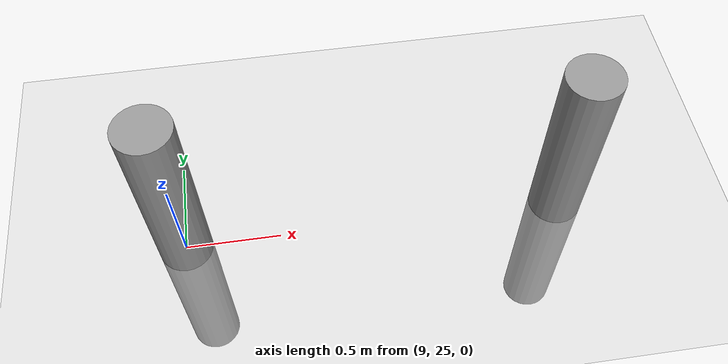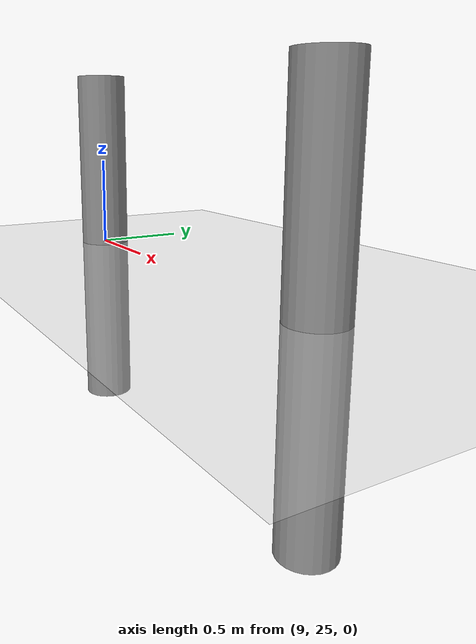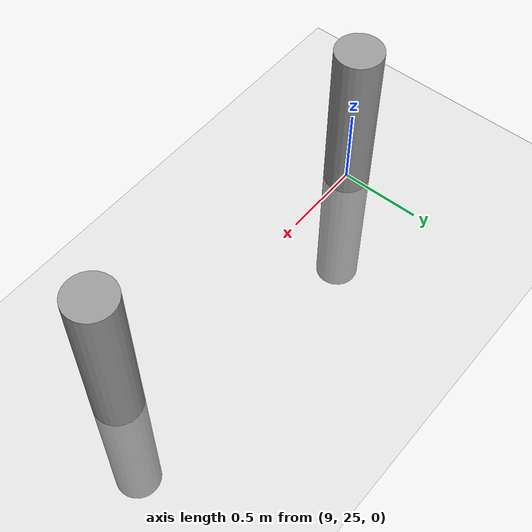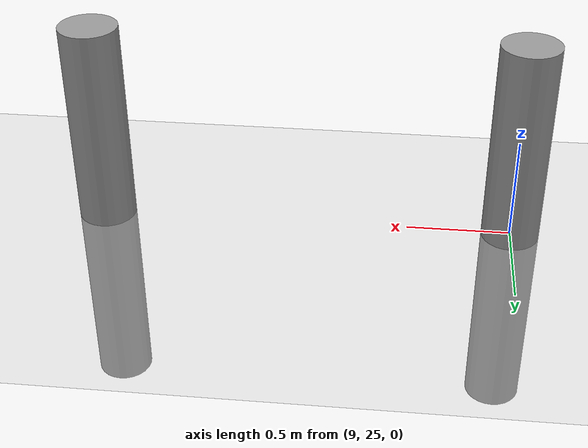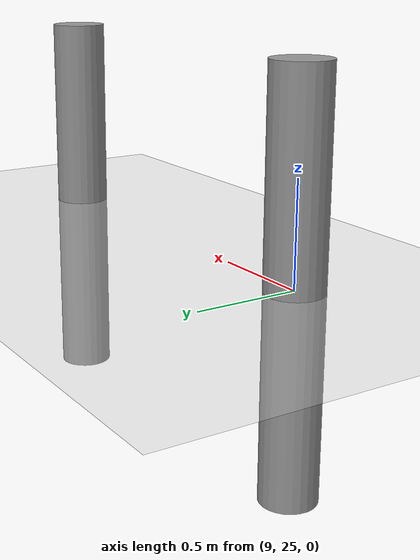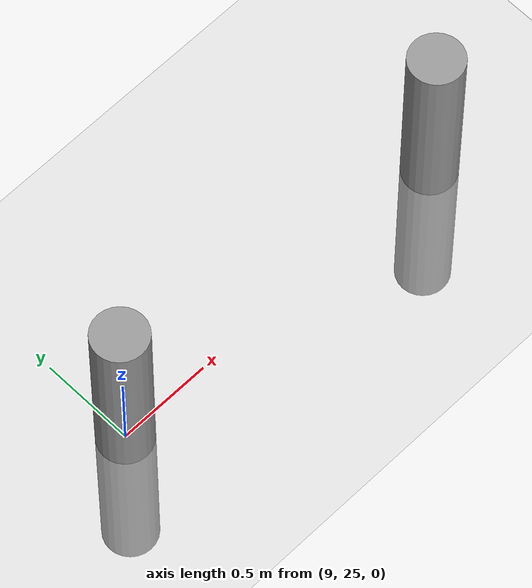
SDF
<sdf version="1.6">
 <world name="default">
  <model name="ground_plane">
   <static>1</static>
   <link name="link">
    <collision name="collision">
     <geometry><plane><normal>0 0 1</normal><size>100 100</size></plane></geometry>
     <surface><friction><ode><mu>100</mu><mu2>50</mu2></ode></friction></surface>
    </collision>
    <visual name="visual">
     <cast_shadows>0</cast_shadows>
     <geometry><plane><normal>0 0 1</normal><size>100 100</size></plane></geometry>
     <material>
      <script><uri>file://media/materials/scripts/gazebo.material</uri><name>Gazebo/Grey</name></script>
     </material>
    </visual>
   </link>
  </model>
  <model name="my_cylinder014_clone_29_0">
   <pose>11 25 0 0 -0 0</pose>
   <link name="my_cylinder014::link">
    <inertial>
     <mass>1</mass>
     <inertia><ixx>0.145833</ixx><ixy>0</ixy><ixz>0</ixz><iyy>0.145833</iyy><iyz>0</iyz><izz>0.125</izz></inertia>
    </inertial>
    <visual name="visual">
     <geometry><cylinder><radius>0.14</radius><length>2</length></cylinder></geometry>
     <material>
      <script><name>Gazebo/Grey</name><uri>file://media/materials/scripts/gazebo.material</uri></script>
      <ambient>0.3 0.3 0.3 1</ambient>
      <diffuse>0.7 0.7 0.7 1</diffuse>
      <specular>1 0.01 0.01 1</specular>
      <emissive>0 0 0 1</emissive>
      <shader type="vertex"><normal_map>__default__</normal_map></shader>
     </material>
    </visual>
    <collision name="collision">
     <geometry><cylinder><radius>0.14</radius><length>2</length></cylinder></geometry>
     <surface>
      <friction>
       <ode><mu>1</mu><mu2>1</mu2><fdir1>0 0 0</fdir1><slip1>0</slip1><slip2>0</slip2></ode>
       <torsional>
        <coefficient>1</coefficient>
        <patch_radius>0</patch_radius>
        <surface_radius>0</surface_radius>
        <use_patch_radius>1</use_patch_radius>
        <ode><slip>0</slip></ode>
       </torsional>
      </friction>
      <bounce><restitution_coefficient>0</restitution_coefficient><threshold>1e+06</threshold></bounce>
      <contact>
       <collide_without_contact>0</collide_without_contact>
       <collide_without_contact_bitmask>1</collide_without_contact_bitmask>
       <collide_bitmask>1</collide_bitmask>
       <ode>
        <soft_cfm>0</soft_cfm>
        <soft_erp>0.2</soft_erp>
        <kp>1e+13</kp>
        <kd>1</kd>
        <max_vel>0.01</max_vel>
        <min_depth>0</min_depth>
       </ode>
       <bullet>
        <split_impulse>1</split_impulse>
        <split_impulse_penetration_threshold>-0.01</split_impulse_penetration_threshold>
        <soft_cfm>0</soft_cfm>
        <soft_erp>0.2</soft_erp>
        <kp>1e+13</kp>
        <kd>1</kd>
       </bullet>
      </contact>
     </surface>
    </collision>
   </link>
   <static>1</static>
  </model>
  <model name="my_cylinder014_clone_28_1">
   <pose>9 25 0 0 -0 0</pose>
   <link name="my_cylinder014::link">
    <inertial>
     <mass>1</mass>
     <inertia><ixx>0.145833</ixx><ixy>0</ixy><ixz>0</ixz><iyy>0.145833</iyy><iyz>0</iyz><izz>0.125</izz></inertia>
    </inertial>
    <visual name="visual">
     <geometry><cylinder><radius>0.14</radius><length>2</length></cylinder></geometry>
     <material>
      <script><name>Gazebo/Grey</name><uri>file://media/materials/scripts/gazebo.material</uri></script>
      <ambient>0.3 0.3 0.3 1</ambient>
      <diffuse>0.7 0.7 0.7 1</diffuse>
      <specular>1 0.01 0.01 1</specular>
      <emissive>0 0 0 1</emissive>
      <shader type="vertex"><normal_map>__default__</normal_map></shader>
     </material>
    </visual>
    <collision name="collision">
     <geometry><cylinder><radius>0.14</radius><length>2</length></cylinder></geometry>
     <surface>
      <friction>
       <ode><mu>1</mu><mu2>1</mu2><fdir1>0 0 0</fdir1><slip1>0</slip1><slip2>0</slip2></ode>
       <torsional>
        <coefficient>1</coefficient>
        <patch_radius>0</patch_radius>
        <surface_radius>0</surface_radius>
        <use_patch_radius>1</use_patch_radius>
        <ode><slip>0</slip></ode>
       </torsional>
      </friction>
      <bounce><restitution_coefficient>0</restitution_coefficient><threshold>1e+06</threshold></bounce>
      <contact>
       <collide_without_contact>0</collide_without_contact>
       <collide_without_contact_bitmask>1</collide_without_contact_bitmask>
       <collide_bitmask>1</collide_bitmask>
       <ode>
        <soft_cfm>0</soft_cfm>
        <soft_erp>0.2</soft_erp>
        <kp>1e+13</kp>
        <kd>1</kd>
        <max_vel>0.01</max_vel>
        <min_depth>0</min_depth>
       </ode>
       <bullet>
        <split_impulse>1</split_impulse>
        <split_impulse_penetration_threshold>-0.01</split_impulse_penetration_threshold>
        <soft_cfm>0</soft_cfm>
        <soft_erp>0.2</soft_erp>
        <kp>1e+13</kp>
        <kd>1</kd>
       </bullet>
      </contact>
     </surface>
    </collision>
   </link>
   <static>1</static>
  </model>
  <model name="my_cylinder014_clone_28_1">
   <pose>9 25 0 0 -0 0</pose>
   <link name="my_cylinder014::link">
    <inertial>
     <mass>1</mass>
     <inertia><ixx>0.145833</ixx><ixy>0</ixy><ixz>0</ixz><iyy>0.145833</iyy><iyz>0</iyz><izz>0.125</izz></inertia>
    </inertial>
    <visual name="visual">
     <geometry><cylinder><radius>0.14</radius><length>2</length></cylinder></geometry>
     <material>
      <script><name>Gazebo/Grey</name><uri>file://media/materials/scripts/gazebo.material</uri></script>
      <ambient>0.3 0.3 0.3 1</ambient>
      <diffuse>0.7 0.7 0.7 1</diffuse>
      <specular>1 0.01 0.01 1</specular>
      <emissive>0 0 0 1</emissive>
      <shader type="vertex"><normal_map>__default__</normal_map></shader>
     </material>
    </visual>
    <collision name="collision">
     <geometry><cylinder><radius>0.14</radius><length>2</length></cylinder></geometry>
     <surface>
      <friction>
       <ode><mu>1</mu><mu2>1</mu2><fdir1>0 0 0</fdir1><slip1>0</slip1><slip2>0</slip2></ode>
       <torsional>
        <coefficient>1</coefficient>
        <patch_radius>0</patch_radius>
        <surface_radius>0</surface_radius>
        <use_patch_radius>1</use_patch_radius>
        <ode><slip>0</slip></ode>
       </torsional>
      </friction>
      <bounce><restitution_coefficient>0</restitution_coefficient><threshold>1e+06</threshold></bounce>
      <contact>
       <collide_without_contact>0</collide_without_contact>
       <collide_without_contact_bitmask>1</collide_without_contact_bitmask>
       <collide_bitmask>1</collide_bitmask>
       <ode>
        <soft_cfm>0</soft_cfm>
        <soft_erp>0.2</soft_erp>
        <kp>1e+13</kp>
        <kd>1</kd>
        <max_vel>0.01</max_vel>
        <min_depth>0</min_depth>
       </ode>
       <bullet>
        <split_impulse>1</split_impulse>
        <split_impulse_penetration_threshold>-0.01</split_impulse_penetration_threshold>
        <soft_cfm>0</soft_cfm>
        <soft_erp>0.2</soft_erp>
        <kp>1e+13</kp>
        <kd>1</kd>
       </bullet>
      </contact>
     </surface>
    </collision>
   </link>
   <static>1</static>
  </model>
 </world>
</sdf>
